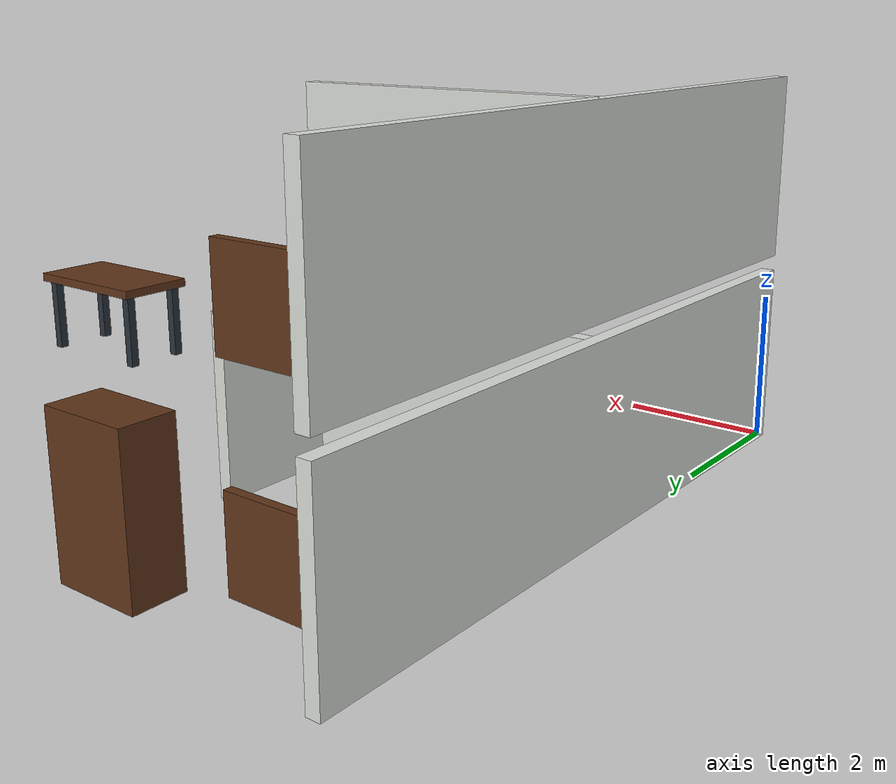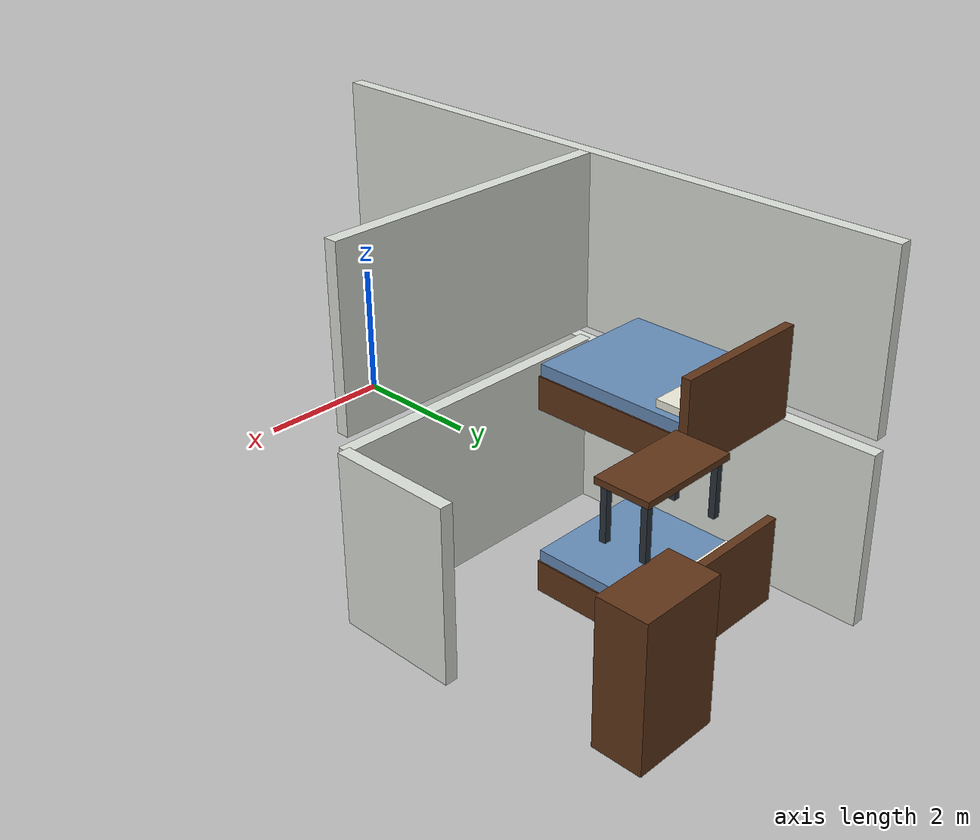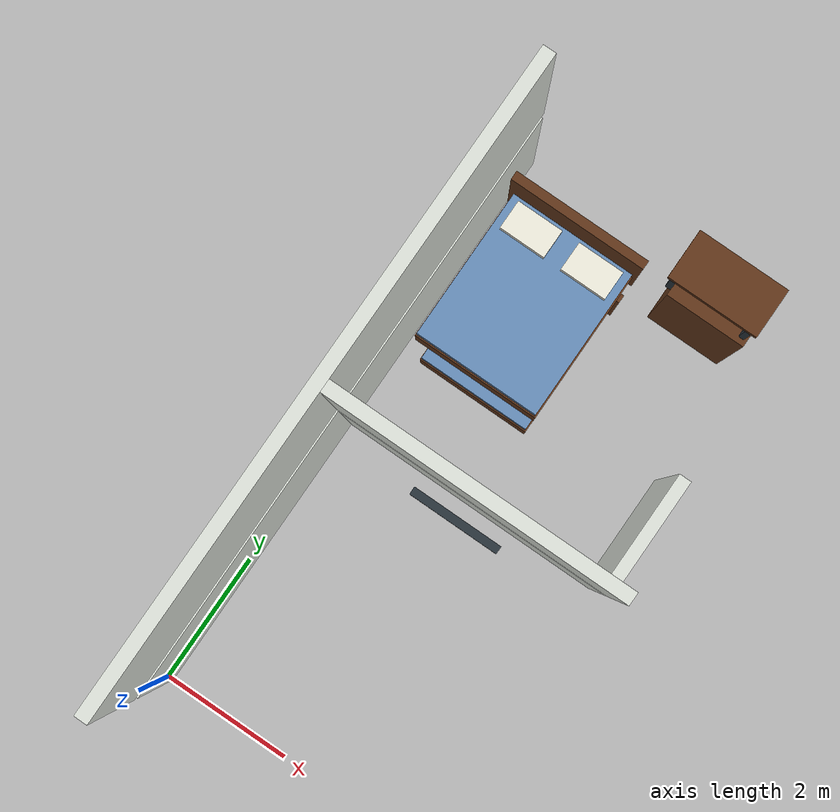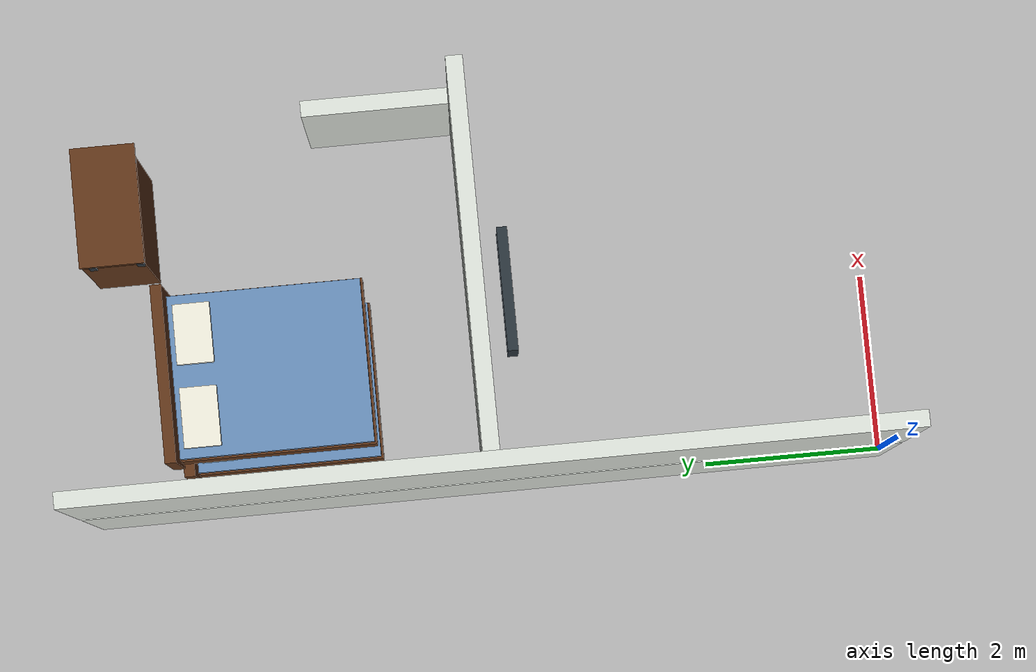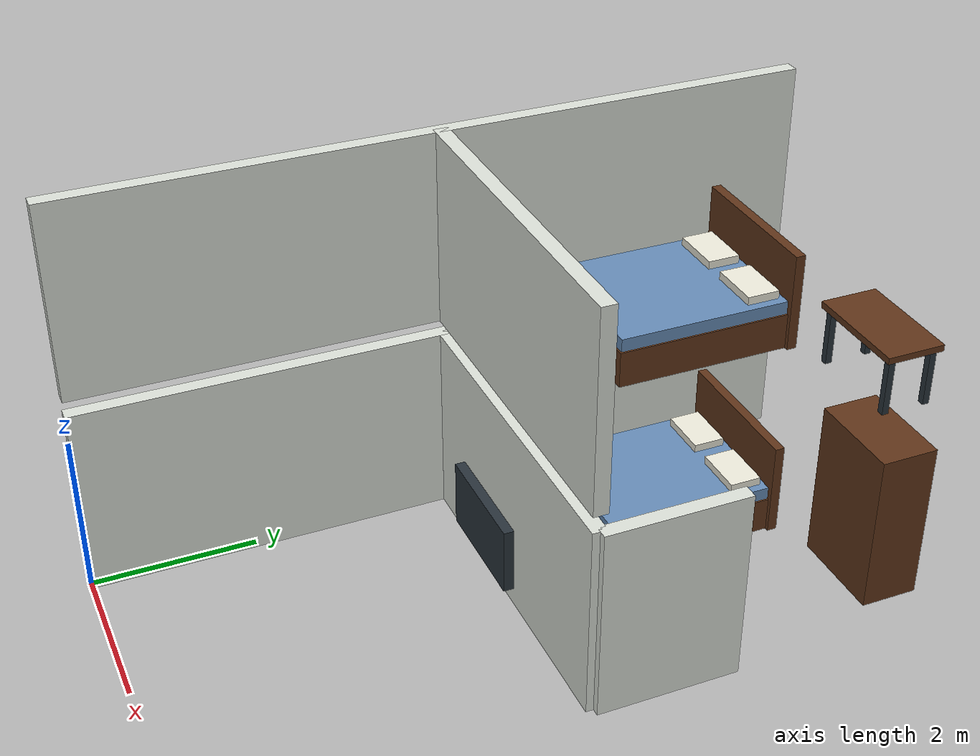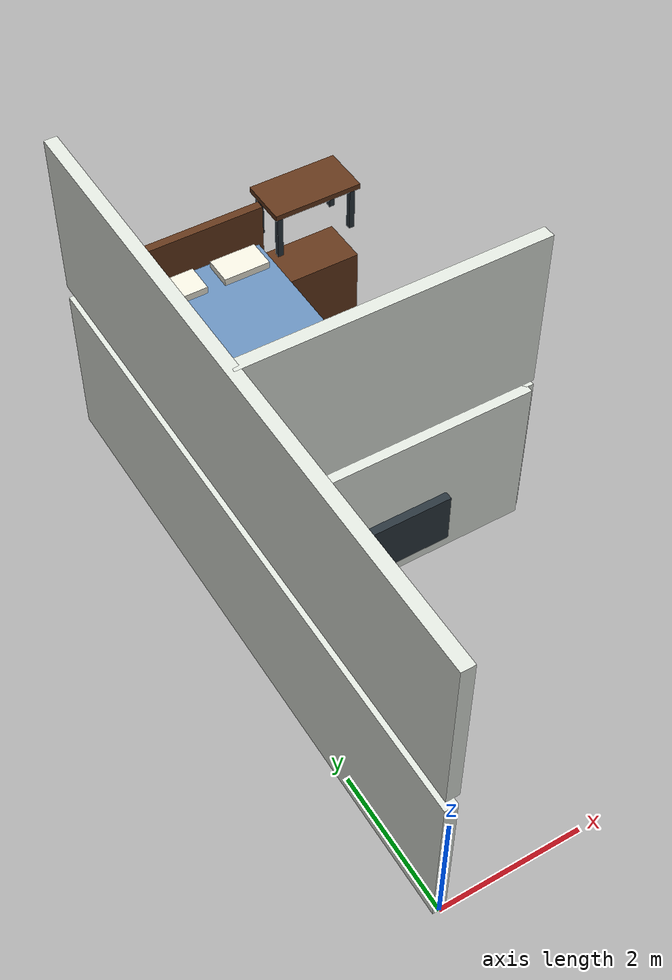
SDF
<sdf version="1.7">
 <model name="home_indoor">
  <static>true</static>
  <link name="f0_west">
   <pose>0 4.5 1.2 0 0 0</pose>
   <collision name="f0_west_collision">
    <geometry><box><size>0.18 9 2.4</size></box></geometry>
    <surface><friction><ode><mu>1.0</mu><mu2>1.0</mu2></ode></friction></surface>
   </collision>
   <visual name="f0_west_visual">
    <geometry><box><size>0.18 9 2.4</size></box></geometry>
    <material><ambient>0.86 0.88 0.85 1</ambient><diffuse>0.86 0.88 0.85 1</diffuse></material>
   </visual>
  </link>
  <link name="f0_room_4.2_1_south">
   <pose>4.2 5.36 1.2 0 0 0</pose>
   <collision name="f0_room_4.2_1_south_collision">
    <geometry><box><size>0.18 1.72 2.4</size></box></geometry>
    <surface><friction><ode><mu>1.0</mu><mu2>1.0</mu2></ode></friction></surface>
   </collision>
   <visual name="f0_room_4.2_1_south_visual">
    <geometry><box><size>0.18 1.72 2.4</size></box></geometry>
    <material><ambient>0.86 0.88 0.85 1</ambient><diffuse>0.86 0.88 0.85 1</diffuse></material>
   </visual>
  </link>
  <link name="f0_cross_wall_2.1">
   <pose>2.1 4.5 1.2 0 0 0</pose>
   <collision name="f0_cross_wall_2.1_collision">
    <geometry><box><size>4.2 0.18 2.4</size></box></geometry>
    <surface><friction><ode><mu>1.0</mu><mu2>1.0</mu2></ode></friction></surface>
   </collision>
   <visual name="f0_cross_wall_2.1_visual">
    <geometry><box><size>4.2 0.18 2.4</size></box></geometry>
    <material><ambient>0.86 0.88 0.85 1</ambient><diffuse>0.86 0.88 0.85 1</diffuse></material>
   </visual>
  </link>
  <link name="f1_west">
   <pose>0 4.5 3.8 0 0 0</pose>
   <collision name="f1_west_collision">
    <geometry><box><size>0.18 9 2.4</size></box></geometry>
    <surface><friction><ode><mu>1.0</mu><mu2>1.0</mu2></ode></friction></surface>
   </collision>
   <visual name="f1_west_visual">
    <geometry><box><size>0.18 9 2.4</size></box></geometry>
    <material><ambient>0.86 0.88 0.85 1</ambient><diffuse>0.86 0.88 0.85 1</diffuse></material>
   </visual>
  </link>
  <link name="f1_cross_wall_2.1">
   <pose>2.1 4.5 3.8 0 0 0</pose>
   <collision name="f1_cross_wall_2.1_collision">
    <geometry><box><size>4.2 0.18 2.4</size></box></geometry>
    <surface><friction><ode><mu>1.0</mu><mu2>1.0</mu2></ode></friction></surface>
   </collision>
   <visual name="f1_cross_wall_2.1_visual">
    <geometry><box><size>4.2 0.18 2.4</size></box></geometry>
    <material><ambient>0.86 0.88 0.85 1</ambient><diffuse>0.86 0.88 0.85 1</diffuse></material>
   </visual>
  </link>
  <link name="television">
   <pose>2.1 4.12 1.1 0 0 0</pose>
   <collision name="television_collision">
    <geometry><box><size>1.4 0.12 0.8</size></box></geometry>
    <surface><friction><ode><mu>1.0</mu><mu2>1.0</mu2></ode></friction></surface>
   </collision>
   <visual name="television_visual">
    <geometry><box><size>1.4 0.12 0.8</size></box></geometry>
    <material><ambient>0.16 0.20 0.23 1</ambient><diffuse>0.16 0.20 0.23 1</diffuse></material>
   </visual>
  </link>
  <link name="guest_bed_base">
   <pose>1.3 6.8 0.22 0 0 0</pose>
   <collision name="guest_bed_base_collision">
    <geometry><box><size>1.8 2.2 0.44</size></box></geometry>
    <surface><friction><ode><mu>1.0</mu><mu2>1.0</mu2></ode></friction></surface>
   </collision>
   <visual name="guest_bed_base_visual">
    <geometry><box><size>1.8 2.2 0.44</size></box></geometry>
    <material><ambient>0.38 0.21 0.10 1</ambient><diffuse>0.38 0.21 0.10 1</diffuse></material>
   </visual>
  </link>
  <link name="guest_bed_mattress">
   <pose>1.3 6.8 0.51 0 0 0</pose>
   <collision name="guest_bed_mattress_collision">
    <geometry><box><size>1.76 2.16 0.18</size></box></geometry>
    <surface><friction><ode><mu>1.0</mu><mu2>1.0</mu2></ode></friction></surface>
   </collision>
   <visual name="guest_bed_mattress_visual">
    <geometry><box><size>1.76 2.16 0.18</size></box></geometry>
    <material><ambient>0.40 0.55 0.72 1</ambient><diffuse>0.40 0.55 0.72 1</diffuse></material>
   </visual>
  </link>
  <link name="guest_bed_head">
   <pose>1.3 7.87 0.6 0 0 0</pose>
   <collision name="guest_bed_head_collision">
    <geometry><box><size>1.9 0.12 1.2</size></box></geometry>
    <surface><friction><ode><mu>1.0</mu><mu2>1.0</mu2></ode></friction></surface>
   </collision>
   <visual name="guest_bed_head_visual">
    <geometry><box><size>1.9 0.12 1.2</size></box></geometry>
    <material><ambient>0.38 0.21 0.10 1</ambient><diffuse>0.38 0.21 0.10 1</diffuse></material>
   </visual>
  </link>
  <link name="guest_bed_pillow_-0.45">
   <pose>0.85 7.55 0.65 0 0 0</pose>
   <collision name="guest_bed_pillow_-0.45_collision">
    <geometry><box><size>0.65 0.4 0.1</size></box></geometry>
    <surface><friction><ode><mu>1.0</mu><mu2>1.0</mu2></ode></friction></surface>
   </collision>
   <visual name="guest_bed_pillow_-0.45_visual">
    <geometry><box><size>0.65 0.4 0.1</size></box></geometry>
    <material><ambient>0.93 0.92 0.86 1</ambient><diffuse>0.93 0.92 0.86 1</diffuse></material>
   </visual>
  </link>
  <link name="guest_bed_pillow_0.45">
   <pose>1.75 7.55 0.65 0 0 0</pose>
   <collision name="guest_bed_pillow_0.45_collision">
    <geometry><box><size>0.65 0.4 0.1</size></box></geometry>
    <surface><friction><ode><mu>1.0</mu><mu2>1.0</mu2></ode></friction></surface>
   </collision>
   <visual name="guest_bed_pillow_0.45_visual">
    <geometry><box><size>0.65 0.4 0.1</size></box></geometry>
    <material><ambient>0.93 0.92 0.86 1</ambient><diffuse>0.93 0.92 0.86 1</diffuse></material>
   </visual>
  </link>
  <link name="guest_wardrobe">
   <pose>3.3 8.45 1 0 0 0</pose>
   <collision name="guest_wardrobe_collision">
    <geometry><box><size>1.2 0.7 2</size></box></geometry>
    <surface><friction><ode><mu>1.0</mu><mu2>1.0</mu2></ode></friction></surface>
   </collision>
   <visual name="guest_wardrobe_visual">
    <geometry><box><size>1.2 0.7 2</size></box></geometry>
    <material><ambient>0.38 0.21 0.10 1</ambient><diffuse>0.38 0.21 0.10 1</diffuse></material>
   </visual>
  </link>
  <link name="second_bed_base">
   <pose>1.3 6.8 2.82 0 0 0</pose>
   <collision name="second_bed_base_collision">
    <geometry><box><size>1.8 2.2 0.44</size></box></geometry>
    <surface><friction><ode><mu>1.0</mu><mu2>1.0</mu2></ode></friction></surface>
   </collision>
   <visual name="second_bed_base_visual">
    <geometry><box><size>1.8 2.2 0.44</size></box></geometry>
    <material><ambient>0.38 0.21 0.10 1</ambient><diffuse>0.38 0.21 0.10 1</diffuse></material>
   </visual>
  </link>
  <link name="second_bed_mattress">
   <pose>1.3 6.8 3.11 0 0 0</pose>
   <collision name="second_bed_mattress_collision">
    <geometry><box><size>1.76 2.16 0.18</size></box></geometry>
    <surface><friction><ode><mu>1.0</mu><mu2>1.0</mu2></ode></friction></surface>
   </collision>
   <visual name="second_bed_mattress_visual">
    <geometry><box><size>1.76 2.16 0.18</size></box></geometry>
    <material><ambient>0.40 0.55 0.72 1</ambient><diffuse>0.40 0.55 0.72 1</diffuse></material>
   </visual>
  </link>
  <link name="second_bed_head">
   <pose>1.3 7.87 3.2 0 0 0</pose>
   <collision name="second_bed_head_collision">
    <geometry><box><size>1.9 0.12 1.2</size></box></geometry>
    <surface><friction><ode><mu>1.0</mu><mu2>1.0</mu2></ode></friction></surface>
   </collision>
   <visual name="second_bed_head_visual">
    <geometry><box><size>1.9 0.12 1.2</size></box></geometry>
    <material><ambient>0.38 0.21 0.10 1</ambient><diffuse>0.38 0.21 0.10 1</diffuse></material>
   </visual>
  </link>
  <link name="second_bed_pillow_-0.45">
   <pose>0.85 7.55 3.25 0 0 0</pose>
   <collision name="second_bed_pillow_-0.45_collision">
    <geometry><box><size>0.65 0.4 0.1</size></box></geometry>
    <surface><friction><ode><mu>1.0</mu><mu2>1.0</mu2></ode></friction></surface>
   </collision>
   <visual name="second_bed_pillow_-0.45_visual">
    <geometry><box><size>0.65 0.4 0.1</size></box></geometry>
    <material><ambient>0.93 0.92 0.86 1</ambient><diffuse>0.93 0.92 0.86 1</diffuse></material>
   </visual>
  </link>
  <link name="second_bed_pillow_0.45">
   <pose>1.75 7.55 3.25 0 0 0</pose>
   <collision name="second_bed_pillow_0.45_collision">
    <geometry><box><size>0.65 0.4 0.1</size></box></geometry>
    <surface><friction><ode><mu>1.0</mu><mu2>1.0</mu2></ode></friction></surface>
   </collision>
   <visual name="second_bed_pillow_0.45_visual">
    <geometry><box><size>0.65 0.4 0.1</size></box></geometry>
    <material><ambient>0.93 0.92 0.86 1</ambient><diffuse>0.93 0.92 0.86 1</diffuse></material>
   </visual>
  </link>
  <link name="second_desk_top">
   <pose>3.2 8.35 3.32 0 0 0</pose>
   <collision name="second_desk_top_collision">
    <geometry><box><size>1.3 0.7 0.08</size></box></geometry>
    <surface><friction><ode><mu>1.0</mu><mu2>1.0</mu2></ode></friction></surface>
   </collision>
   <visual name="second_desk_top_visual">
    <geometry><box><size>1.3 0.7 0.08</size></box></geometry>
    <material><ambient>0.38 0.21 0.10 1</ambient><diffuse>0.38 0.21 0.10 1</diffuse></material>
   </visual>
  </link>
  <link name="second_desk_leg_-1_-1">
   <pose>2.64 8.09 2.94 0 0 0</pose>
   <collision name="second_desk_leg_-1_-1_collision">
    <geometry><box><size>0.08 0.08 0.68</size></box></geometry>
    <surface><friction><ode><mu>1.0</mu><mu2>1.0</mu2></ode></friction></surface>
   </collision>
   <visual name="second_desk_leg_-1_-1_visual">
    <geometry><box><size>0.08 0.08 0.68</size></box></geometry>
    <material><ambient>0.16 0.20 0.23 1</ambient><diffuse>0.16 0.20 0.23 1</diffuse></material>
   </visual>
  </link>
  <link name="second_desk_leg_-1_1">
   <pose>2.64 8.61 2.94 0 0 0</pose>
   <collision name="second_desk_leg_-1_1_collision">
    <geometry><box><size>0.08 0.08 0.68</size></box></geometry>
    <surface><friction><ode><mu>1.0</mu><mu2>1.0</mu2></ode></friction></surface>
   </collision>
   <visual name="second_desk_leg_-1_1_visual">
    <geometry><box><size>0.08 0.08 0.68</size></box></geometry>
    <material><ambient>0.16 0.20 0.23 1</ambient><diffuse>0.16 0.20 0.23 1</diffuse></material>
   </visual>
  </link>
  <link name="second_desk_leg_1_-1">
   <pose>3.76 8.09 2.94 0 0 0</pose>
   <collision name="second_desk_leg_1_-1_collision">
    <geometry><box><size>0.08 0.08 0.68</size></box></geometry>
    <surface><friction><ode><mu>1.0</mu><mu2>1.0</mu2></ode></friction></surface>
   </collision>
   <visual name="second_desk_leg_1_-1_visual">
    <geometry><box><size>0.08 0.08 0.68</size></box></geometry>
    <material><ambient>0.16 0.20 0.23 1</ambient><diffuse>0.16 0.20 0.23 1</diffuse></material>
   </visual>
  </link>
  <link name="second_desk_leg_1_1">
   <pose>3.76 8.61 2.94 0 0 0</pose>
   <collision name="second_desk_leg_1_1_collision">
    <geometry><box><size>0.08 0.08 0.68</size></box></geometry>
    <surface><friction><ode><mu>1.0</mu><mu2>1.0</mu2></ode></friction></surface>
   </collision>
   <visual name="second_desk_leg_1_1_visual">
    <geometry><box><size>0.08 0.08 0.68</size></box></geometry>
    <material><ambient>0.16 0.20 0.23 1</ambient><diffuse>0.16 0.20 0.23 1</diffuse></material>
   </visual>
  </link>
 </model>
</sdf>
